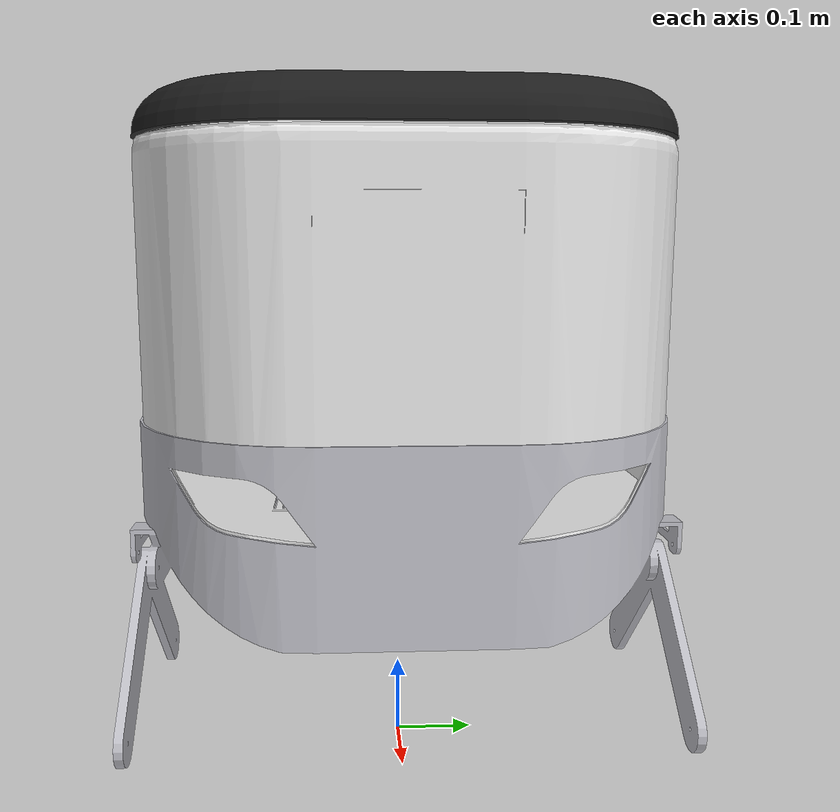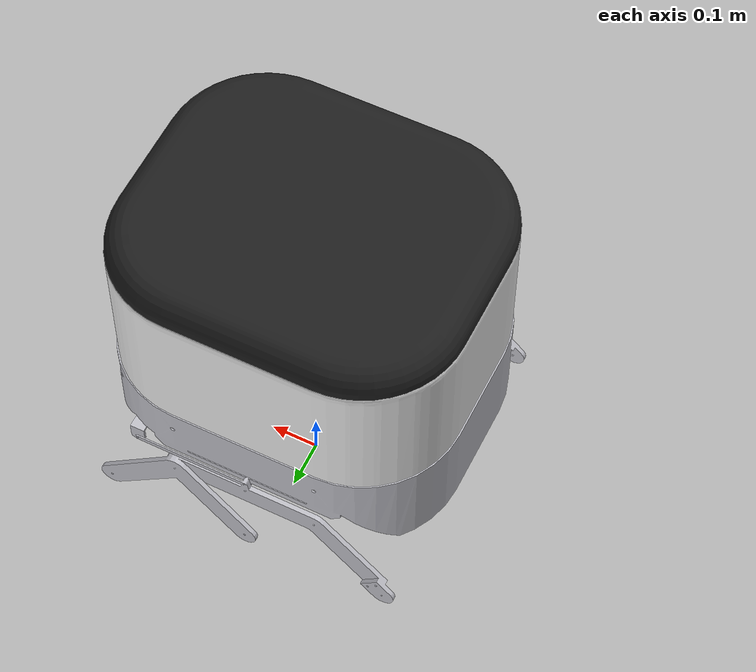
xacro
<?xml version="1.0"?>
<robot xmlns:xacro="http://www.ros.org/wiki/xacro">

    <link name="base_footprint"/>

    <link name="base_link">
        <visual>
            <origin xyz="0 0 0" rpy="0 0 0" />
            <geometry>
                <mesh filename="package://deliverbot_description/meshes/base_link.STL" />
            </geometry>
            <material name="anodize_silver"/>
        </visual>
        <collision>
            <origin xyz="0 0 -0.14" rpy="0 0 0" />
            <geometry>
                <box size="0.75 0.65 0.25" />
            </geometry>
        </collision>
        <xacro:box_inertia m="6.3848" l="0.75" h="0.65" w="0.30" xyz="0 0 -0.14" rpy="0 0 0"/>
    </link>

    <link name="base_chassis_link">
        <visual>
            <origin xyz="0 0 0" rpy="0 0 0" />
            <geometry>
                <mesh filename="package://deliverbot_description/meshes/base_chassis_link.STL" />
            </geometry>
            <material name="pearl_white"/>
        </visual>
        <collision>
            <origin xyz="0 0 0.2" rpy="0 0 0" />
            <geometry>
                <box size="0.7 0.6 0.4" />
            </geometry>
        </collision>
        <xacro:box_inertia m="6.1826" l="0.7" h="0.6" w="0.4" xyz="0 0 0.2" rpy="0 0 0"/>
    </link>

    <link name="chassis_top_link">
        <visual>
            <origin xyz="0.35 0 -0.456" rpy="0 0 0" />
            <geometry>
                <mesh filename="package://deliverbot_description/meshes/chassis_hatch_link.STL" />
            </geometry>
            <material name="stain_black"/>
        </visual>
        <collision>
            <origin xyz="0.35 0 -0.025" rpy="0 0 0" />
            <geometry>
                <box size="0.7 0.6 0.05" />
            </geometry>
        </collision>
        <xacro:box_inertia m="4.3077" l="0.7" h="0.6" w="0.05" xyz="0.35 0 -0.025" rpy="0 0 0"/>
    </link>

    <joint name="base_base_joint" type="fixed">
        <parent link="base_footprint" />
        <child link="base_link" />
        <origin xyz="0 0 0.371545" rpy="0 0 0" />
    </joint>

    <joint name="base_body_joint" type="fixed">
        <parent link="base_link" />
        <child link="base_chassis_link" />
        <origin xyz="0 0 0" rpy="0 0 0" />
    </joint>

    <joint name="body_hatch_joint" type="revolute">
        <parent link="base_chassis_link" />
        <child link="chassis_top_link" />
        <origin xyz="-0.35 0 0.456" rpy="0 0 0" />
        <axis xyz="0 1 0" />
        <limit lower="-1.2" upper="0.05" velocity="0.5" effort="1000.0"/>
        <dynamics damping="5.0" friction="1.0"/>
    </joint>

</robot>
